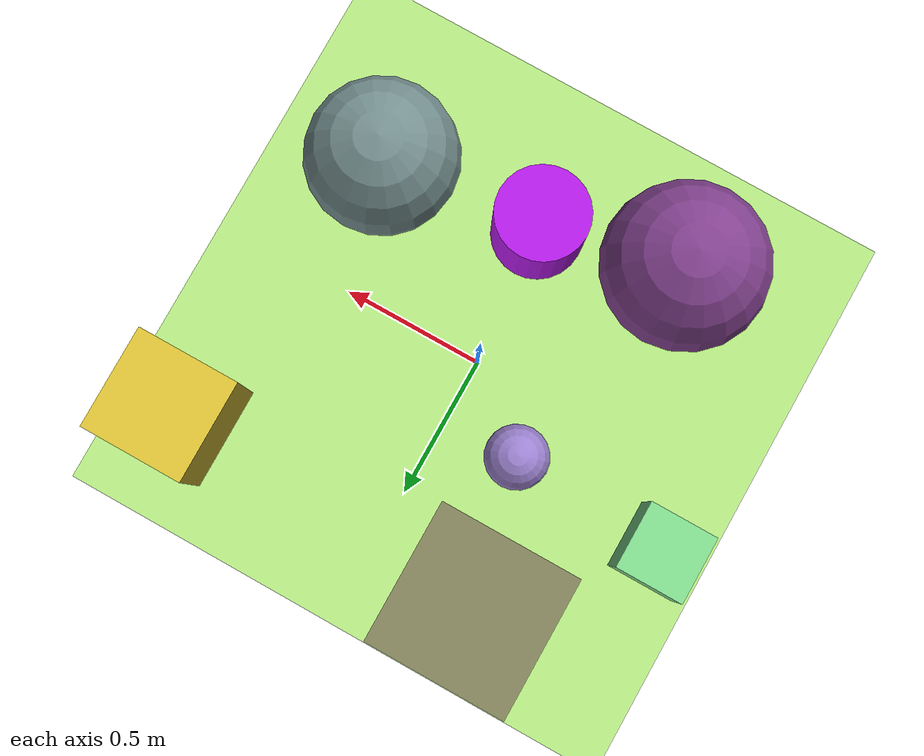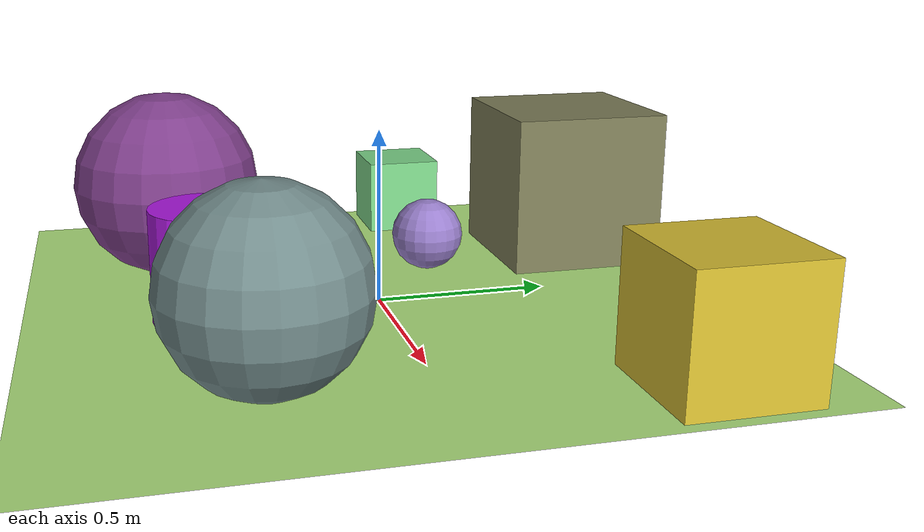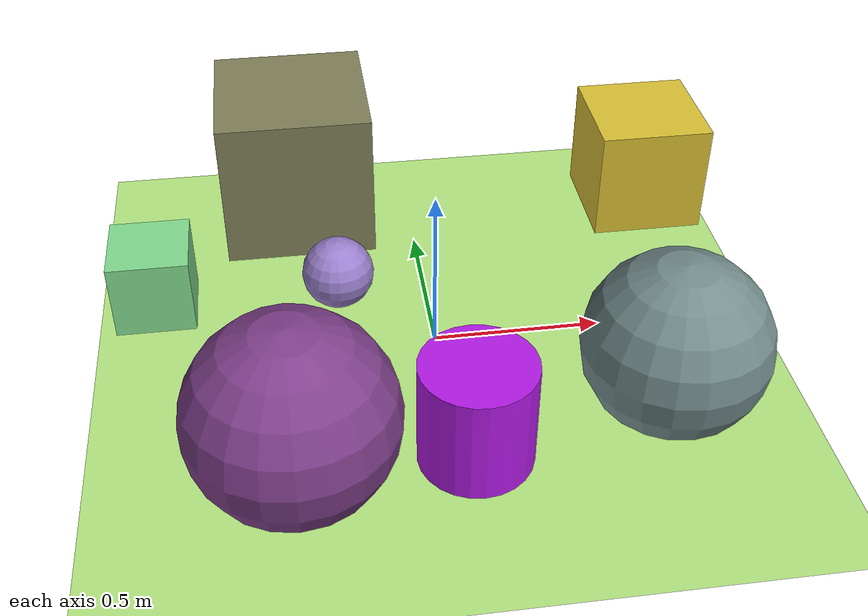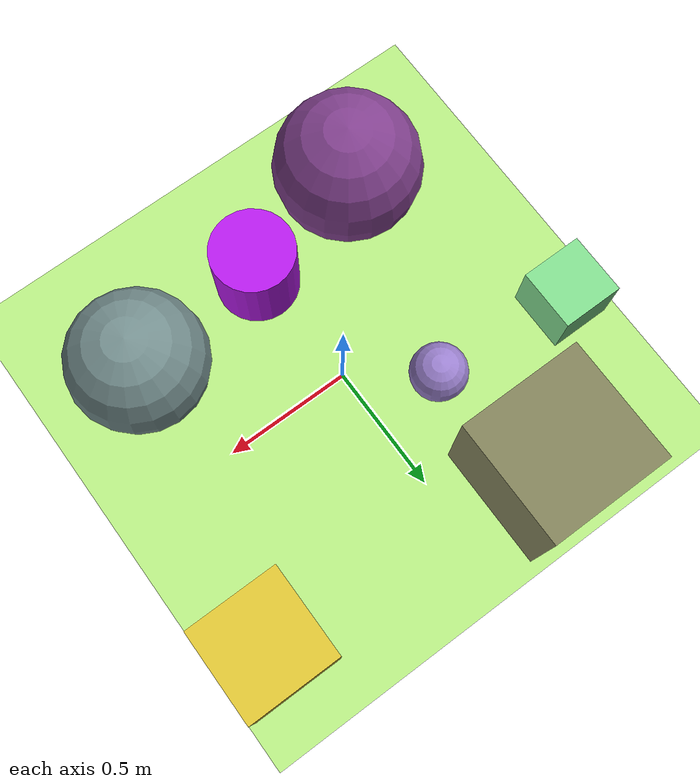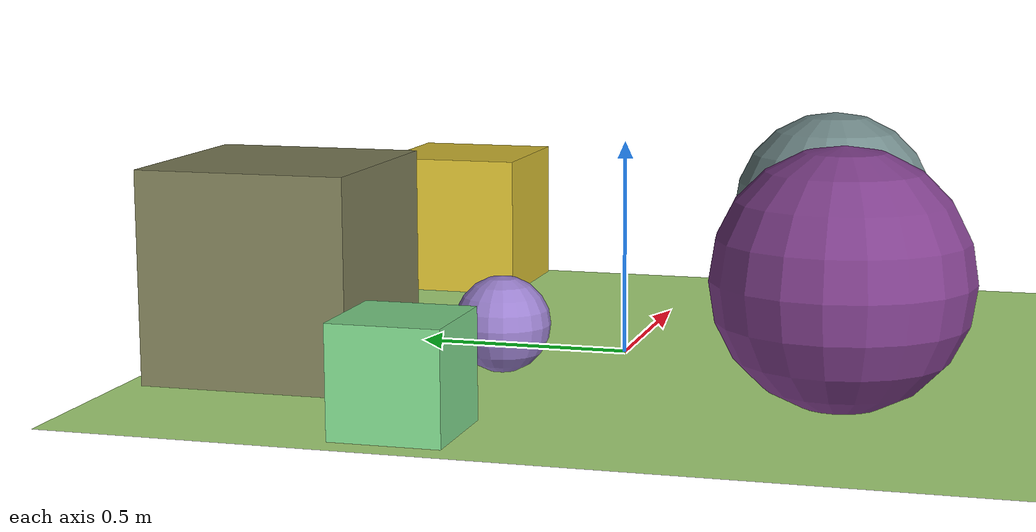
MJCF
<mujoco>
   <asset>
<texture type="skybox" builtin="gradient" rgb1="0.8 0.2 0.5" rgb2="0.9 0.6 1.0" width="256" height="256"/>
<texture name="gradient_0" builtin="gradient" rgb1="0.3 0.3 0.2" rgb2="0.7 0.2 0.9" width="200" height="200"/>
<texture name="gradient_1" builtin="gradient" rgb1="0.9 0.7 0.1" rgb2="0.8 0.8 0.3" width="200" height="200"/>
<texture name="flat_2" builtin="flat" rgb1="0.6 0.5 0.8" rgb2="0.6 0.5 0.8"  width="200" height="200"/>
<texture name="gradient_3" builtin="gradient" rgb1="0.7 0.5 0.6" rgb2="0.2 0.6 0.5" width="200" height="200"/>
<texture name="gradient_4" builtin="gradient" rgb1="0.6 0.9 0.6" rgb2="0.4 0.8 0.5" width="200" height="200"/>
<texture name="gradient_5" builtin="gradient" rgb1="0.8 0.4 0.2" rgb2="0.2 0.6 0.5" width="200" height="200"/>
<texture name="flat_6" builtin="flat" rgb1="0.7 0.1 0.9" rgb2="0.7 0.1 0.9"  width="200" height="200"/><material name="gradient_0_mat" reflectance="0" texture="gradient_0" texuniform="true"/>
<material name="gradient_1_mat" reflectance="0" texture="gradient_1" texuniform="true"/>
<material name="flat_2_mat" reflectance="0" texture="flat_2" texuniform="true"/>
<material name="gradient_3_mat" reflectance="0" texture="gradient_3" texuniform="true"/>
<material name="gradient_4_mat" reflectance="0" texture="gradient_4" texuniform="true"/>
<material name="gradient_5_mat" reflectance="0" texture="gradient_5" texuniform="true"/>
<material name="flat_6_mat" reflectance="0" texture="flat_6" texuniform="true"/>
   </asset>

   <worldbody>
      <light diffuse=".9 .9 .9" pos="0 0 3" dir="0 0 -1"/>
     <geom type="plane" size="1 1 0.1" rgba="0.7 0.9 0.5 1"/>
<geom type="sphere" pos="-0.44 -0.57 0.28" size="0.28 0.28 0.28" material="gradient_0_mat" />
<geom type="box" pos="0.79 0.64 0.18" size="0.18 0.18 0.18" material="gradient_1_mat" />
<geom type="sphere" pos="-0.27 0.22 0.11" size="0.11 0.11 0.11" material="flat_2_mat" />
<geom type="sphere" pos="0.59 -0.41 0.26" size="0.26 0.26 0.26" material="gradient_3_mat" />
<geom type="box" pos="-0.83 0.26 0.12" size="0.12 0.12 0.12" material="gradient_4_mat" />
<geom type="box" pos="-0.37 0.71 0.24" size="0.24 0.24 0.24" material="gradient_5_mat" />
<geom type="cylinder" pos="0.04 -0.49 0.16" size="0.16 0.16 0.16" material="flat_6_mat" /><camera euler="60 0 180" fovy="60" name="camera_a" pos="0 -1.5 1"></camera>   </worldbody>
</mujoco>
